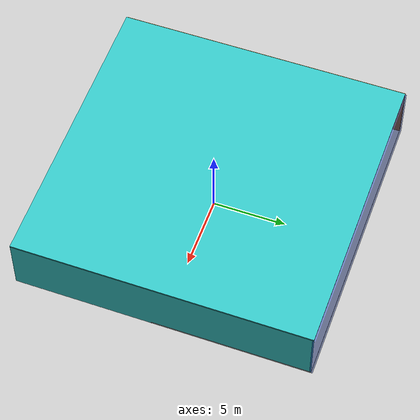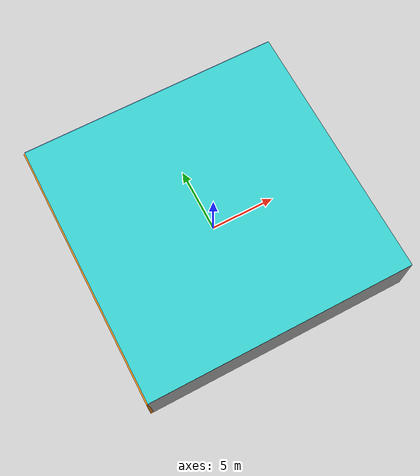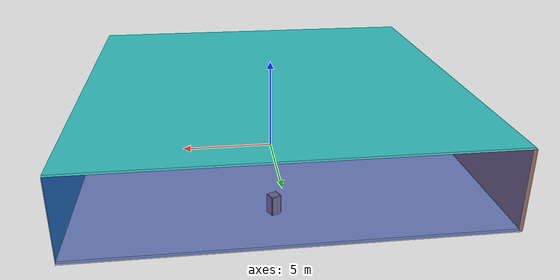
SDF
<sdf version="1.4">
 <world name="default">
  <physics type="ode">
   <max_step_size>0.001</max_step_size>
   <real_time_factor>1</real_time_factor>
   <real_time_update_rate>1000</real_time_update_rate>
   <gravity>0 0 -9.8</gravity>
  </physics>
  <scene><ambient>0.4 0.4 0.4 1</ambient><background>0.7 0.7 0.7 1</background><shadows>1</shadows></scene>
  <model name="Surrounding">
   <static>1</static>
   <link name="Ceiling">
    <collision name="Ceiling_Collision"><geometry><box><size>20 20 0.1</size></box></geometry></collision>
    <visual name="Ceiling_Visual">
     <geometry><box><size>20 20 0.1</size></box></geometry>
     <material>
      <script><uri>file://media/materials/scripts/gazebo.material</uri><name>Gazebo/TurquoiseGlow</name></script>
     </material>
    </visual>
    <pose>0 0 4.05 0 0 0</pose>
   </link>
   <link name="Wall_South">
    <collision name="Wall_South_Collision">
     <geometry><box><size>20 0 4</size></box></geometry>
     <pose>0 0 2 0 -0 0</pose>
    </collision>
    <visual name="Wall_South_Visual">
     <pose>0 0 2 0 -0 0</pose>
     <geometry><box><size>20 0 4</size></box></geometry>
     <material>
      <script><uri>file://media/materials/scripts/gazebo.material</uri><name>Gazebo/PioneerBody</name></script>
     </material>
    </visual>
    <velocity_decay><linear>0</linear><angular>0</angular></velocity_decay>
    <pose>0 -10 0 0 -0 0</pose>
   </link>
   <link name="Wall_East">
    <collision name="Wall_21_Collision">
     <geometry><box><size>20 0 4</size></box></geometry>
     <pose>0 0 2 0 -0 0</pose>
    </collision>
    <visual name="Wall_21_Visual">
     <pose>0 0 2 0 -0 0</pose>
     <geometry><box><size>20 0 4</size></box></geometry>
     <material>
      <script><uri>file://media/materials/scripts/gazebo.material</uri><name>Gazebo/Turquoise</name></script>
     </material>
    </visual>
    <velocity_decay><linear>0</linear><angular>0</angular></velocity_decay>
    <pose>10 0 0 0 -0 1.5708</pose>
   </link>
   <link name="Wall_North">
    <collision name="Wall_22_Collision">
     <geometry><box><size>20 0.2 4</size></box></geometry>
     <pose>0 0 2 0 -0 0</pose>
    </collision>
    <visual name="Wall_22_Visual">
     <pose>0 0 2 0 -0 0</pose>
     <geometry><box><size>20 0.2 4</size></box></geometry>
     <material>
      <script><uri>file://media/materials/scripts/gazebo.material</uri><name>Gazebo/BlueTransparent</name></script>
     </material>
    </visual>
    <velocity_decay><linear>0</linear><angular>0</angular></velocity_decay>
    <pose>0 10 0 0 -0 0</pose>
   </link>
   <link name="Wall_West">
    <collision name="Wall_23_Collision">
     <geometry><box><size>20 0.2 4</size></box></geometry>
     <pose>0 0 2 0 -0 0</pose>
    </collision>
    <visual name="Wall_23_Visual">
     <pose>0 0 2 0 -0 0</pose>
     <geometry><box><size>20 0.2 4</size></box></geometry>
     <material>
      <script><uri>file://media/materials/scripts/gazebo.material</uri><name>Gazebo/Orange</name></script>
     </material>
    </visual>
    <velocity_decay><linear>0</linear><angular>0</angular></velocity_decay>
    <pose>-10 0 0 0 0 -1.5708</pose>
   </link>
   <link name="Ground_link">
    <collision name="collision">
     <pose>0 0 .05 0 -0 0</pose>
     <geometry><box><size>20 20 0.1</size></box></geometry>
    </collision>
    <visual name="visual">
     <pose>0 0 .05 0 -0 0</pose>
     <geometry><box><size>20 20 0.1</size></box></geometry>
     <material>
      <script><uri>file://media/materials/scripts/gazebo.material</uri><name>Gazebo/LightOn</name></script>
     </material>
    </visual>
   </link>
   <static>1</static>
  </model>
  <spherical_coordinates>
   <surface_model>EARTH_WGS84</surface_model>
   <latitude_deg>0</latitude_deg>
   <longitude_deg>0</longitude_deg>
   <elevation>0</elevation>
   <heading_deg>0</heading_deg>
  </spherical_coordinates>
  <light name="lightball_0" type="diffuse">
   <diffuse>0.8 0.8 0.8 1</diffuse>
   <specular>0.2 0.2 0.2 1</specular>
   <attenuation>
    <range>100</range>
    <constant>0.7</constant>
    <linear>0.01</linear>
    <quadratic>0.001</quadratic>
   </attenuation>
   <direction>-0.5 0.1 -0.9</direction>
   <pose>-4.21070394644 -2.40508791788 2.62975855501 0 0 0</pose>
  </light>
  <light name="lightball_1" type="diffuse">
   <diffuse>0.8 0.8 0.8 1</diffuse>
   <specular>0.2 0.2 0.2 1</specular>
   <attenuation>
    <range>100</range>
    <constant>0.7</constant>
    <linear>0.01</linear>
    <quadratic>0.001</quadratic>
   </attenuation>
   <direction>-0.5 0.1 -0.9</direction>
   <pose>-4.65640861092 1.46064457494 1.58789215437 0 0 0</pose>
  </light>
  <light name="lightball_2" type="diffuse">
   <diffuse>0.8 0.8 0.8 1</diffuse>
   <specular>0.2 0.2 0.2 1</specular>
   <attenuation>
    <range>100</range>
    <constant>0.7</constant>
    <linear>0.01</linear>
    <quadratic>0.001</quadratic>
   </attenuation>
   <direction>-0.5 0.1 -0.9</direction>
   <pose>8.83182749464 -2.03274089818 2.32994284699 0 0 0</pose>
  </light>
  <light name="lightball_3" type="diffuse">
   <diffuse>0.8 0.8 0.8 1</diffuse>
   <specular>0.2 0.2 0.2 1</specular>
   <attenuation>
    <range>100</range>
    <constant>0.7</constant>
    <linear>0.01</linear>
    <quadratic>0.001</quadratic>
   </attenuation>
   <direction>-0.5 0.1 -0.9</direction>
   <pose>1.83241779774 -3.4092021261 1.69852069521 0 0 0</pose>
  </light>
  <light name="lightball_4" type="diffuse">
   <diffuse>0.8 0.8 0.8 1</diffuse>
   <specular>0.2 0.2 0.2 1</specular>
   <attenuation>
    <range>100</range>
    <constant>0.7</constant>
    <linear>0.01</linear>
    <quadratic>0.001</quadratic>
   </attenuation>
   <direction>-0.5 0.1 -0.9</direction>
   <pose>7.67149398136 -0.142099789622 3.05086746934 0 0 0</pose>
  </light>
  <light name="lightball_5" type="diffuse">
   <diffuse>0.8 0.8 0.8 1</diffuse>
   <specular>0.2 0.2 0.2 1</specular>
   <attenuation>
    <range>100</range>
    <constant>0.7</constant>
    <linear>0.01</linear>
    <quadratic>0.001</quadratic>
   </attenuation>
   <direction>-0.5 0.1 -0.9</direction>
   <pose>1.40848781152 2.8028213332 3.08645552419 0 0 0</pose>
  </light>
  <light name="lightball_6" type="diffuse">
   <diffuse>0.8 0.8 0.8 1</diffuse>
   <specular>0.2 0.2 0.2 1</specular>
   <attenuation>
    <range>100</range>
    <constant>0.7</constant>
    <linear>0.01</linear>
    <quadratic>0.001</quadratic>
   </attenuation>
   <direction>-0.5 0.1 -0.9</direction>
   <pose>3.22345733718 0.356737784031 3.43147271062 0 0 0</pose>
  </light>
  <light name="lightball_7" type="diffuse">
   <diffuse>0.8 0.8 0.8 1</diffuse>
   <specular>0.2 0.2 0.2 1</specular>
   <attenuation>
    <range>100</range>
    <constant>0.7</constant>
    <linear>0.01</linear>
    <quadratic>0.001</quadratic>
   </attenuation>
   <direction>-0.5 0.1 -0.9</direction>
   <pose>-8.34842893483 9.25498320143 1.38934247751 0 0 0</pose>
  </light>
  <light name="lightball_8" type="diffuse">
   <diffuse>0.8 0.8 0.8 1</diffuse>
   <specular>0.2 0.2 0.2 1</specular>
   <attenuation>
    <range>100</range>
    <constant>0.7</constant>
    <linear>0.01</linear>
    <quadratic>0.001</quadratic>
   </attenuation>
   <direction>-0.5 0.1 -0.9</direction>
   <pose>8.49874223394 -5.76641646493 1.15406165414 0 0 0</pose>
  </light>
  <light name="lightball_9" type="diffuse">
   <diffuse>0.8 0.8 0.8 1</diffuse>
   <specular>0.2 0.2 0.2 1</specular>
   <attenuation>
    <range>100</range>
    <constant>0.7</constant>
    <linear>0.01</linear>
    <quadratic>0.001</quadratic>
   </attenuation>
   <direction>-0.5 0.1 -0.9</direction>
   <pose>-9.48870962614 -5.79595381438 0.923527587119 0 0 0</pose>
  </light>
  <include>
   <uri>model://construction_cone</uri>
   <pose>-7.64533782919 -4.07876362436 0 0 0 2.21252997647</pose>
  </include>
  <include>
   <uri>model://textured_shapes</uri>
   <pose>-5.1047233015 -3.70011566149 0 0 0 2.78731628076</pose>
  </include>
  <include>
   <uri>model://textured_shapes</uri>
   <pose>-4.94825847114 -1.22126839387 0 0 0 2.67699994813</pose>
  </include>
  <include><uri>model://cabinet</uri><pose>-0.312157250667 -7.6135054697 0 0 0 2.77408492939</pose></include>
  <include><uri>model://cabinet</uri><pose>2.66853821807 -4.0675333233 0 0 0 0.778571717079</pose></include>
  <include>
   <uri>model://textured_shapes</uri>
   <pose>0.972989924935 -0.596532612044 0 0 0 1.74237888625</pose>
  </include>
  <include><uri>model://cabinet</uri><pose>0.71962849145 7.33266784707 0 0 0 1.99856522616</pose></include>
 </world>
</sdf>

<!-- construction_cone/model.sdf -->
<sdf version="1.5">
  <model name="Construction Cone">
    <link name="link">
      <collision name="collision">
        <geometry>
          <mesh>
            <scale>10 10 10</scale>
            <uri>file://isr-testbed/construction_cone/meshes/construction_cone.dae</uri>
          </mesh>
        </geometry>
      </collision>
      <visual name="visual">
        <geometry>
          <mesh>
            <scale>10 10 10</scale>
            <uri>file://isr-testbed/construction_cone/meshes/construction_cone.dae</uri>
          </mesh>
        </geometry>
      </visual>
    </link>
  </model>
</sdf>

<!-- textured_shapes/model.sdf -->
<sdf version="1.6">
  <model name="textured_shapes">
    <pose>0 0 0.5 0 0 0</pose>
    <link name="box">
      <pose>0 -1.5 0 0 0 0</pose>
      <collision name="collision">
        <geometry>
          <box>
            <size>1 1 1</size>
          </box>
        </geometry>
      </collision>
      <visual name="visual">
        <geometry>
          <box>
            <size>1 1 1</size>
          </box>
        </geometry>
        <material>
          <script>
            <uri>model://../model_source/models/textured_shapes/materials/scripts</uri>
            <uri>model://../model_source/models/textured_shapes/materials/textures</uri>
            <name>TexturedShape/Squares</name>
          </script>
        </material>
      </visual>
    </link>
    <link name="sphere">
      <collision name="collision">
        <geometry>
          <sphere>
            <radius>0.5</radius>
          </sphere>
        </geometry>
      </collision>
      <visual name="visual">
        <geometry>
          <sphere>
            <radius>0.5</radius>
          </sphere>
        </geometry>
        <material>
          <script>
            <uri>model://../model_source/models/textured_shapes/materials/scripts</uri>
            <uri>model://../model_source/models/textured_shapes/materials/textures</uri>
            <name>TexturedShape/Squares</name>
          </script>
        </material>
      </visual>
    </link>
    <link name="cylinder">
      <pose>0 1.5 0 0 0 0</pose>
      <collision name="collision">
        <geometry>
          <cylinder>
            <radius>0.5</radius>
            <length>1</length>
          </cylinder>
        </geometry>
      </collision>
      <visual name="visual">
        <geometry>
          <cylinder>
            <radius>0.5</radius>
            <length>1</length>
          </cylinder>
        </geometry>
        <material>
          <script>
            <uri>model://../model_source/models/textured_shapes/materials/scripts</uri>
            <uri>model://../model_source/models/textured_shapes/materials/textures</uri>
            <name>TexturedShape/Squares</name>
          </script>
        </material>
      </visual>
    </link>
  </model>
</sdf>

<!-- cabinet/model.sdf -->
<sdf version="1.5">
  <model name="cabinet">
    <static>true</static>
    <link name="cabinet_bottom_plate">
      <inertial>
        <pose>0 0 -1 0 0 0</pose>
        <inertia>
          <ixx>2.050000</ixx>
          <ixy>0</ixy>
          <ixz>0</ixz>
          <iyy>2.050000</iyy>
          <iyz>0</iyz>
          <izz>2.050000</izz>
        </inertia>
        <mass>25.000000</mass>
      </inertial>
      <collision name="cabinet_bottom_plate_geom">
        <pose>0 0 0.010000 0 0 0</pose>
        <geometry>
          <box>
            <size>0.450000 0.450000 0.020000</size>
          </box>
        </geometry>
      </collision>
      <visual name="cabinet_bottom_plate_geom_visual">
        <pose>0 0 0.010000 0 0 0</pose>
        <geometry>
          <box>
            <size>0.450000 0.450000 0.020000</size>
          </box>
        </geometry>
        <material>
          <script>
            <uri>model://media/materials/scripts/gazebo.material</uri>
            <name>Gazebo/Wood</name>
          </script>
        </material>
      </visual>
      <collision name="cabinet_bottom_plate_geom_cabinet_back_plate">
        <pose>0.235000 0 0.510000 0 0 0</pose>
        <geometry>
          <box>
            <size>0.020000 0.450000 1.020000</size>
          </box>
        </geometry>
      </collision>
      <visual name="cabinet_bottom_plate_geom_cabinet_back_plate_visual">
        <pose>0.235000 0 0.510000 0 0 0</pose>
        <geometry>
          <box>
            <size>0.020000 0.450000 1.020000</size>
          </box>
        </geometry>
        <material>
          <script>
            <uri>model://media/materials/scripts/gazebo.material</uri>
            <name>Gazebo/Wood</name>
          </script>
        </material>
      </visual>
      <collision name="cabinet_bottom_plate_geom_cabinet_left_plate">
        <pose>0 0.235000 0.510000 0 0 0</pose>
        <geometry>
          <box>
            <size>0.450000 0.020000 1.020000</size>
          </box>
        </geometry>
      </collision>
      <visual name="cabinet_bottom_plate_geom_cabinet_left_plate_visual">
        <pose>0 0.235000 0.510000 0 0 0</pose>
        <geometry>
          <box>
            <size>0.450000 0.020000 1.020000</size>
          </box>
        </geometry>
        <material>
          <script>
            <uri>model://media/materials/scripts/gazebo.material</uri>
            <name>Gazebo/Wood</name>
          </script>
        </material>
      </visual>
      <collision name="cabinet_bottom_plate_geom_cabinet_middle_plate">
        <pose>0 0 0.510000 0 0 0</pose>
        <geometry>
          <box>
            <size>0.450000 0.450000 0.020000</size>
          </box>
        </geometry>
      </collision>
      <visual name="cabinet_bottom_plate_geom_cabinet_middle_plate_visual">
        <pose>0 0 0.510000 0 0 0</pose>
        <geometry>
          <box>
            <size>0.450000 0.450000 0.020000</size>
          </box>
        </geometry>
        <material>
          <script>
            <uri>model://media/materials/scripts/gazebo.material</uri>
            <name>Gazebo/Wood</name>
          </script>
        </material>
      </visual>
      <collision name="cabinet_bottom_plate_geom_cabinet_right_plate">
        <pose>0 -0.235000 0.510000 0 0 0</pose>
        <geometry>
          <box>
            <size>0.450000 0.020000 1.020000</size>
          </box>
        </geometry>
      </collision>
      <visual name="cabinet_bottom_plate_geom_cabinet_right_plate_visual">
        <pose>0 -0.235000 0.510000 0 0 0</pose>
        <geometry>
          <box>
            <size>0.450000 0.020000 1.020000</size>
          </box>
        </geometry>
        <material>
          <script>
            <uri>model://media/materials/scripts/gazebo.material</uri>
            <name>Gazebo/Wood</name>
          </script>
        </material>
      </visual>
      <collision name="cabinet_bottom_plate_geom_cabinet_top_plate">
        <pose>0 0 1.010000 0 0 0</pose>
        <geometry>
          <box>
            <size>0.450000 0.450000 0.020000</size>
          </box>
        </geometry>
      </collision>
      <visual name="cabinet_bottom_plate_geom_cabinet_top_plate_visual">
        <pose>0 0 1.010000 0 0 0</pose>
        <geometry>
          <box>
            <size>0.450000 0.450000 0.020000</size>
          </box>
        </geometry>
        <material>
          <script>
            <uri>model://media/materials/scripts/gazebo.material</uri>
            <name>Gazebo/Wood</name>
          </script>
        </material>
      </visual>
    </link>
  </model>
</sdf>
